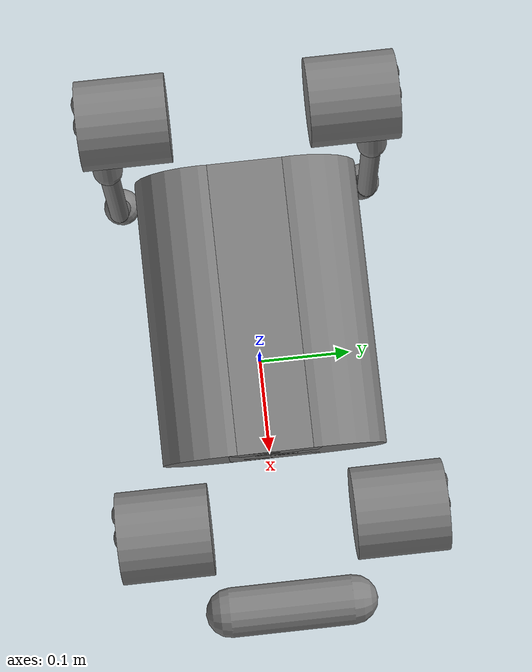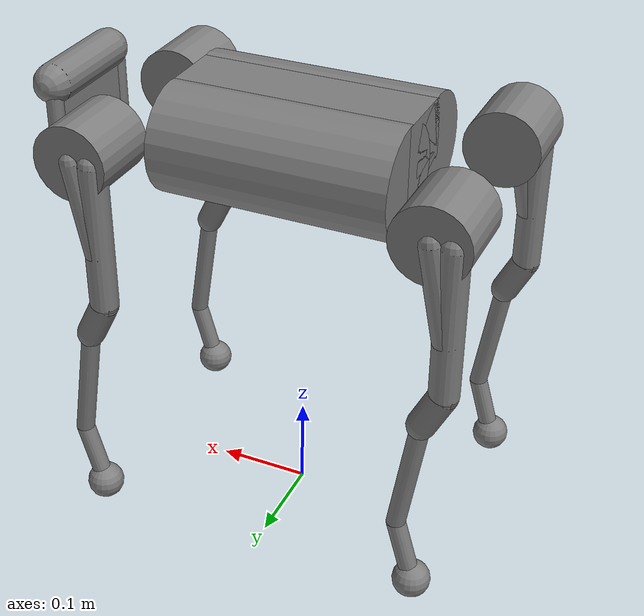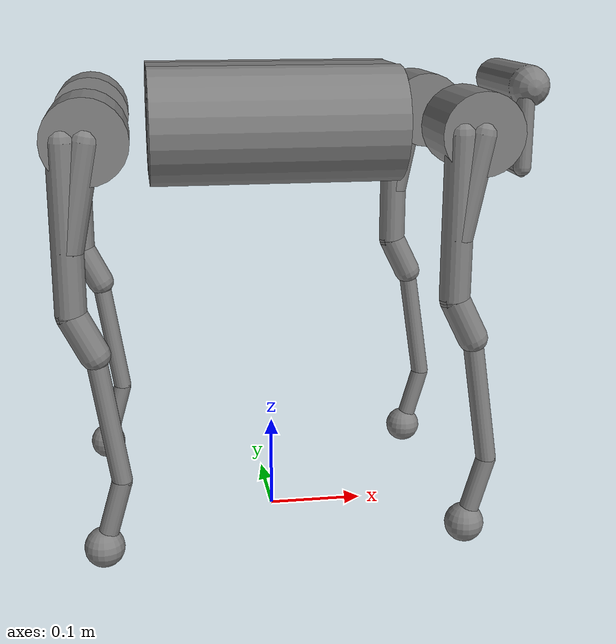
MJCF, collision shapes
<?xml version='1.0' encoding='utf-8'?>
<mujoco model="a1">
  <compiler angle="radian" meshdir="assets" texturedir="assets" autolimits="true" />

  <option cone="elliptic" impratio="100" />

  <default>
    <default class="a1">
      <geom friction="0.6" margin="0" />
      <joint axis="0 1 0" damping="2" armature="0.01" frictionloss="0" />
      <position kp="100" forcerange="-33.5 33.5" />
      <default class="abduction">
        <joint axis="1 0 0" damping="1" range="-0.802851 0.802851" />
        <position ctrlrange="-0.802851 0.802851" />
      </default>
      <default class="hip">
        <joint range="-1.0472 4.18879" />
        <position ctrlrange="-1.0472 4.18879" />
      </default>
      <default class="knee">
        <joint range="-2.69653 -0.916298" />
        <position ctrlrange="-2.69653 -0.916298" />
      </default>
      <default class="visual">
        <geom type="mesh" contype="0" conaffinity="0" group="2" material="dark" />
      </default>
      <default class="collision">
        <geom group="3" type="capsule" />
        <default class="hip_left">
          <geom size="0.04 0.04" quat="1 1 0 0" type="cylinder" pos="0 0.055 0" />
        </default>
        <default class="hip_right">
          <geom size="0.04 0.04" quat="1 1 0 0" type="cylinder" pos="0 -0.055 0" />
        </default>
        <default class="thigh1">
          <geom size="0.015" fromto="-0.02 0 0 -0.02 0 -0.16" />
        </default>
        <default class="thigh2">
          <geom size="0.015" fromto="0 0 0 -0.02 0 -0.1" />
        </default>
        <default class="thigh3">
          <geom size="0.015" fromto="-0.02 0 -0.16 0 0 -0.2" />
        </default>
        <default class="calf1">
          <geom size="0.01" fromto="0 0 0 0.02 0 -0.13" />
        </default>
        <default class="calf2">
          <geom size="0.01" fromto="0.02 0 -0.13 0 0 -0.2" />
        </default>
        <default class="foot">
          <geom type="sphere" size="0.02" pos="0 0 -0.2" priority="1" solimp="0.015 1 0.02" condim="6" friction="0.8 0.02 0.01" />
        </default>
      </default>
    </default>
  </default>

  <asset>
    <material name="dark" specular="0" shininess="0.25" rgba="0.2 0.2 0.2 1" />
    <texture type="2d" name="trunk_A1" file="trunk_A1.png" />
    <material name="carbonfibre" texture="trunk_A1" specular="0" shininess="0.25" />

    <mesh class="a1" file="calf.obj" />
    <mesh class="a1" file="hip.obj" />
    <mesh class="a1" file="thigh.obj" />
    <mesh class="a1" file="thigh_mirror.obj" />
    <mesh class="a1" file="trunk.obj" />
  </asset>

  <worldbody>
    <light name="spotlight" mode="targetbodycom" target="trunk" pos="0 -1 2" />
    <body name="trunk" pos="0 0 0.43" childclass="a1">
      <freejoint />
      <inertial mass="4.713" pos="0 0.0041 -0.0005" fullinertia="0.0158533 0.0377999 0.0456542 -3.66e-05 -6.11e-05 -2.75e-05" />
      <geom class="visual" mesh="trunk" material="carbonfibre" />
      <geom class="collision" size="0.125 0.04 0.057" type="box" name="trunk_collision1" />
      <geom class="collision" quat="1 0 1 0" pos="0 -0.04 0" size="0.058 0.125" type="cylinder" name="trunk_collision2" />
      <geom class="collision" quat="1 0 1 0" pos="0 +0.04 0" size="0.058 0.125" type="cylinder" name="trunk_collision3" />
      <geom class="collision" pos="0.25 0 0" size="0.005 0.06 0.05" type="box" name="trunk_collision4" />
      <geom class="collision" pos="0.25 0.06 -0.01" size="0.009 0.035" name="trunk_collision5" />
      <geom class="collision" pos="0.25 -0.06 -0.01" size="0.009 0.035" name="trunk_collision6" />
      <geom class="collision" pos="0.25 0 -0.05" size="0.005 0.06" quat="1 1 0 0" name="trunk_collision7" />
      <geom class="collision" pos="0.255 0 0.0355" size="0.021 0.052" quat="1 1 0 0" name="trunk_collision8" />
      <body name="FR_hip" pos="0.183 -0.047 0">
        <inertial mass="0.696" pos="-0.003311 -0.000635 3.1e-05" quat="0.507528 0.506268 0.491507 0.494499" diaginertia="0.000807752 0.00055293 0.000468983" />
        <joint class="abduction" name="FR_hip_joint" />
        <geom class="visual" mesh="hip" quat="0 1 0 0" />
        <geom class="hip_right" name="FR_hip_collision" />
        <body name="FR_thigh" pos="0 -0.08505 0">
          <inertial mass="1.013" pos="-0.003237 0.022327 -0.027326" quat="0.999125 -0.00256393 -0.0409531 -0.00806091" diaginertia="0.00555739 0.00513936 0.00133944" />
          <joint class="hip" name="FR_thigh_joint" />
          <geom class="visual" mesh="thigh_mirror" />
          <geom class="thigh1" name="FR_thigh_collision1" />
          <geom class="thigh2" name="FR_thigh_collision2" />
          <geom class="thigh3" name="FR_thigh_collision3" />
          <body name="FR_calf" pos="0 0 -0.2">
            <inertial mass="0.226" pos="0.00472659 0 -0.131975" quat="0.706886 0.017653 0.017653 0.706886" diaginertia="0.00340344 0.00339393 3.54834e-05" />
            <joint class="knee" name="FR_calf_joint" />
            <geom class="visual" mesh="calf" />
            <geom class="calf1" name="FR_calf_collision1" />
            <geom class="calf2" name="FR_calf_collision2" />
            <geom class="foot" name="FR_foot" />
          <site name="FR" pos="0 0 -0.2" size="0.01" /></body>
        </body>
      </body>
      <body name="FL_hip" pos="0.183 0.047 0">
        <inertial mass="0.696" pos="-0.003311 0.000635 3.1e-05" quat="0.494499 0.491507 0.506268 0.507528" diaginertia="0.000807752 0.00055293 0.000468983" />
        <joint class="abduction" name="FL_hip_joint" />
        <geom class="visual" mesh="hip" />
        <geom class="hip_left" name="FL_hip_collision" />
        <geom class="collision" size="0.04 0.04" pos="0 0.055 0" quat="1 1 0 0" type="cylinder" />
        <body name="FL_thigh" pos="0 0.08505 0">
          <inertial mass="1.013" pos="-0.003237 -0.022327 -0.027326" quat="0.999125 0.00256393 -0.0409531 0.00806091" diaginertia="0.00555739 0.00513936 0.00133944" />
          <joint class="hip" name="FL_thigh_joint" />
          <geom class="visual" mesh="thigh" />
          <geom class="thigh1" name="FL_thigh_collision1" />
          <geom class="thigh2" name="FL_thigh_collision2" />
          <geom class="thigh3" name="FL_thigh_collision3" />
          <body name="FL_calf" pos="0 0 -0.2">
            <inertial mass="0.226" pos="0.00472659 0 -0.131975" quat="0.706886 0.017653 0.017653 0.706886" diaginertia="0.00340344 0.00339393 3.54834e-05" />
            <joint class="knee" name="FL_calf_joint" />
            <geom class="visual" mesh="calf" />
            <geom class="calf1" name="FL_calf_collision1" />
            <geom class="calf2" name="FL_calf_collision2" />
            <geom class="foot" name="FL_foot" />
          <site name="FL" pos="0 0 -0.2" size="0.01" /></body>
        </body>
      </body>
      <body name="RR_hip" pos="-0.183 -0.047 0">
        <inertial mass="0.696" pos="0.003311 -0.000635 3.1e-05" quat="0.491507 0.494499 0.507528 0.506268" diaginertia="0.000807752 0.00055293 0.000468983" />
        <joint class="abduction" name="RR_hip_joint" />
        <geom class="visual" quat="0 0 0 -1" mesh="hip" />
        <geom class="hip_right" name="RR_hip_collision" />
        <body name="RR_thigh" pos="0 -0.08505 0">
          <inertial mass="1.013" pos="-0.003237 0.022327 -0.027326" quat="0.999125 -0.00256393 -0.0409531 -0.00806091" diaginertia="0.00555739 0.00513936 0.00133944" />
          <joint class="hip" name="RR_thigh_joint" />
          <geom class="visual" mesh="thigh_mirror" />
          <geom class="thigh1" name="RR_thigh_collision1" />
          <geom class="thigh2" name="RR_thigh_collision2" />
          <geom class="thigh3" name="RR_thigh_collision3" />
          <body name="RR_calf" pos="0 0 -0.2">
            <inertial mass="0.226" pos="0.00472659 0 -0.131975" quat="0.706886 0.017653 0.017653 0.706886" diaginertia="0.00340344 0.00339393 3.54834e-05" />
            <joint class="knee" name="RR_calf_joint" />
            <geom class="visual" mesh="calf" />
            <geom class="calf1" name="RR_calf_collision1" />
            <geom class="calf2" name="RR_calf_collision2" />
            <geom class="foot" name="RR_foot" />
          <site name="RR" pos="0 0 -0.2" size="0.01" /></body>
        </body>
      </body>
      <body name="RL_hip" pos="-0.183 0.047 0">
        <inertial mass="0.696" pos="0.003311 0.000635 3.1e-05" quat="0.506268 0.507528 0.494499 0.491507" diaginertia="0.000807752 0.00055293 0.000468983" />
        <joint class="abduction" name="RL_hip_joint" />
        <geom class="visual" quat="0 0 1 0" mesh="hip" />
        <geom class="hip_left" name="RL_hip_collision" />
        <body name="RL_thigh" pos="0 0.08505 0">
          <inertial mass="1.013" pos="-0.003237 -0.022327 -0.027326" quat="0.999125 0.00256393 -0.0409531 0.00806091" diaginertia="0.00555739 0.00513936 0.00133944" />
          <joint class="hip" name="RL_thigh_joint" />
          <geom class="visual" mesh="thigh" />
          <geom class="thigh1" name="RL_thigh_collision1" />
          <geom class="thigh2" name="RL_thigh_collision2" />
          <geom class="thigh3" name="RL_thigh_collision3" />
          <body name="RL_calf" pos="0 0 -0.2">
            <inertial mass="0.226" pos="0.00472659 0 -0.131975" quat="0.706886 0.017653 0.017653 0.706886" diaginertia="0.00340344 0.00339393 3.54834e-05" />
            <joint class="knee" name="RL_calf_joint" />
            <geom class="visual" mesh="calf" />
            <geom class="calf1" name="RL_calf_collision1" />
            <geom class="calf2" name="RL_calf_collision2" />
            <geom class="foot" name="RL_foot" />
          <site name="RL" pos="0 0 -0.2" size="0.01" /></body>
        </body>
      </body>
    <site name="imu" pos="0 0 0" group="5" /></body>
  </worldbody>

  <actuator>
    <position class="abduction" name="FR_hip" joint="FR_hip_joint" />
    <position class="hip" name="FR_thigh" joint="FR_thigh_joint" />
    <position class="knee" name="FR_calf" joint="FR_calf_joint" />
    <position class="abduction" name="FL_hip" joint="FL_hip_joint" />
    <position class="hip" name="FL_thigh" joint="FL_thigh_joint" />
    <position class="knee" name="FL_calf" joint="FL_calf_joint" />
    <position class="abduction" name="RR_hip" joint="RR_hip_joint" />
    <position class="hip" name="RR_thigh" joint="RR_thigh_joint" />
    <position class="knee" name="RR_calf" joint="RR_calf_joint" />
    <position class="abduction" name="RL_hip" joint="RL_hip_joint" />
    <position class="hip" name="RL_thigh" joint="RL_thigh_joint" />
    <position class="knee" name="RL_calf" joint="RL_calf_joint" />
  </actuator>

  <keyframe>
    <key name="home" qpos="0 0 0.27 1 0 0 0 0 0.9 -1.8 0 0.9 -1.8 0 0.9 -1.8 0 0.9 -1.8" ctrl="0 0.9 -1.8 0 0.9 -1.8 0 0.9 -1.8 0 0.9 -1.8" />
  </keyframe>
<sensor><gyro name="imu_ang_vel" site="imu" /><velocimeter name="imu_lin_vel" site="imu" /><accelerometer name="imu_lin_acc" site="imu" /><framezaxis name="imu_upvector" objtype="body" objname="world" reftype="site" refname="imu" /><subtreeangmom name="root_angmom" body="trunk" /></sensor></mujoco>
